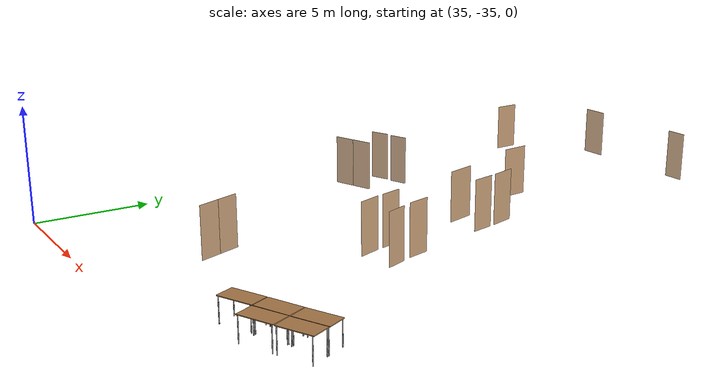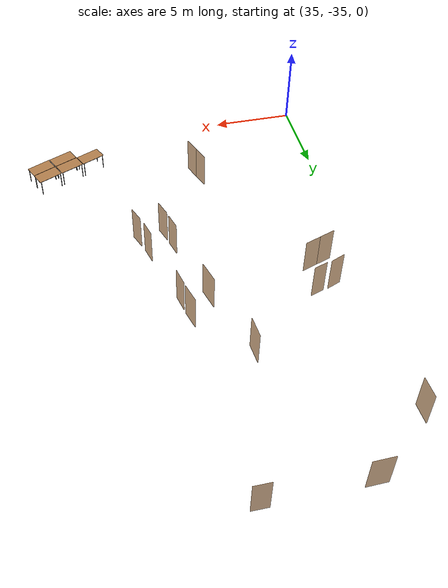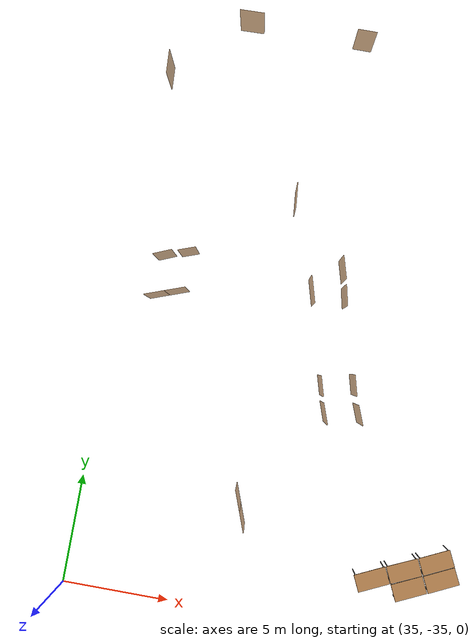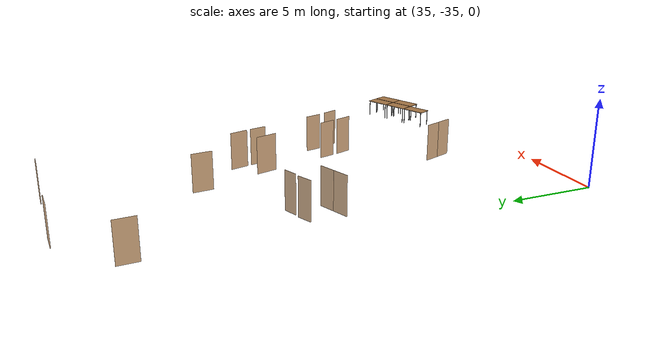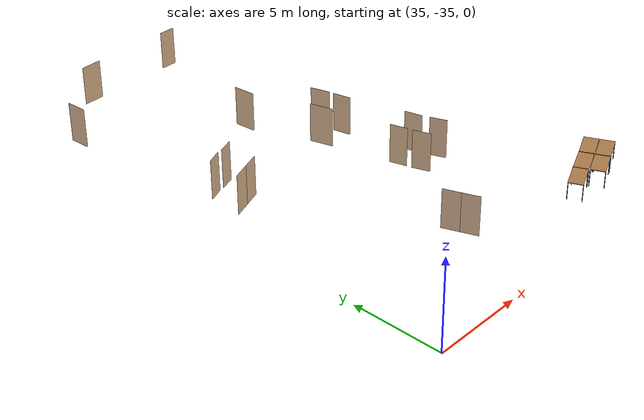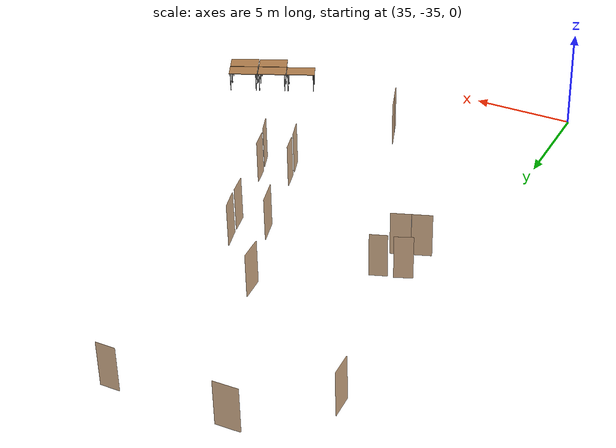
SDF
<sdf version="1.7">
 <world name="world">
  <include><uri>model://sun</uri></include>
  <include>
   <name>OpenRobotics/Table_3</name>
   <uri>model://Table</uri>
   <pose>49.11869046079212 -32.151359632969715 0.0 0 0 0.4303</pose>
   <static>True</static>
  </include>
  <include>
   <name>OpenRobotics/Table_4</name>
   <uri>model://Table</uri>
   <pose>50.516762968333715 -31.527827457209188 0.0 0 0 0.4167</pose>
   <static>True</static>
  </include>
  <include>
   <name>OpenRobotics/Table_5</name>
   <uri>model://Table</uri>
   <pose>51.92469862120098 -30.894205397149992 0.0 0 0 0.4347</pose>
   <static>True</static>
  </include>
  <include>
   <name>OpenRobotics/Table_6</name>
   <uri>model://Table</uri>
   <pose>52.26673436197726 -31.64845259084722 0.0 0 0 0.4389</pose>
   <static>True</static>
  </include>
  <include>
   <name>OpenRobotics/Table_7</name>
   <uri>model://Table</uri>
   <pose>50.85868533962349 -32.28207465090642 0.0 0 0 0.4288</pose>
   <static>True</static>
  </include>
  <model name="D12">
   <pose>47.22224569058811 -24.82995819467613 0.0 0 0 -1.206774434324264</pose>
   <link name="right">
    <pose>0 0 1.11 0 0 0</pose>
    <visual name="right_visual">
     <geometry><box><size>0.9299814647233979 0.03 2.2</size></box></geometry>
     <material><ambient>0.5 0.25 0 0.6</ambient><diffuse>0.5 0.25 0 0.6</diffuse></material>
    </visual>
    <collision name="right_collision">
     <geometry><box><size>0.9299814647233979 0.03 2.2</size></box></geometry>
     <surface><contact><collide_bitmask>0x02</collide_bitmask></contact></surface>
    </collision>
    <inertial>
     <mass>50.0</mass>
     <inertia><ixx>20.17041666666667</ixx><iyy>23.770273019704494</iyy><izz>3.6073563530378197</izz></inertia>
    </inertial>
   </link>
   <joint name="right_joint" type="revolute">
    <parent>world</parent>
    <child>right</child>
    <axis><xyz>0 0 1</xyz><limit><lower>0</lower><upper>1.57</upper></limit></axis>
    <pose>0.46999073236169897 0 0 0 0 0</pose>
   </joint>
   <plugin name="door" filename="libdoor.so">
    <v_max_door>0.5</v_max_door>
    <a_max_door>0.3</a_max_door>
    <a_nom_door>0.15</a_nom_door>
    <dx_min_door>0.01</dx_min_door>
    <f_max_door>500.0</f_max_door>
    <door name="D12" type="SwingDoor" left_joint_name="empty_joint" right_joint_name="right_joint"/>
   </plugin>
  </model>
  <model name="D13">
   <pose>46.78605659127199 -23.541003817892623 0.0 0 0 -1.3188596632420009</pose>
   <link name="right">
    <pose>0 0 1.11 0 0 0</pose>
    <visual name="right_visual">
     <geometry><box><size>0.981892242367588 0.03 2.2</size></box></geometry>
     <material><ambient>0.5 0.25 0 0.6</ambient><diffuse>0.5 0.25 0 0.6</diffuse></material>
    </visual>
    <collision name="right_collision">
     <geometry><box><size>0.981892242367588 0.03 2.2</size></box></geometry>
     <surface><contact><collide_bitmask>0x02</collide_bitmask></contact></surface>
    </collision>
    <inertial>
     <mass>50.0</mass>
     <inertia><ixx>20.17041666666667</ixx><iyy>24.183801565090214</iyy><izz>4.020884898423543</izz></inertia>
    </inertial>
   </link>
   <joint name="right_joint" type="revolute">
    <parent>world</parent>
    <child>right</child>
    <axis><xyz>0 0 -1</xyz><limit><lower>0</lower><upper>1.57</upper></limit></axis>
    <pose>0.495946121183794 0 0 0 0 0</pose>
   </joint>
   <plugin name="door" filename="libdoor.so">
    <v_max_door>0.5</v_max_door>
    <a_max_door>0.3</a_max_door>
    <a_nom_door>0.15</a_nom_door>
    <dx_min_door>0.01</dx_min_door>
    <f_max_door>500.0</f_max_door>
    <door name="D13" type="SwingDoor" left_joint_name="empty_joint" right_joint_name="right_joint"/>
   </plugin>
  </model>
  <model name="D14">
   <pose>45.705815439138505 -19.567913478689803 0.0 0 0 -1.3543970765350084</pose>
   <link name="right">
    <pose>0 0 1.11 0 0 0</pose>
    <visual name="right_visual">
     <geometry><box><size>0.9868671713911081 0.03 2.2</size></box></geometry>
     <material><ambient>0.5 0.25 0 0.6</ambient><diffuse>0.5 0.25 0 0.6</diffuse></material>
    </visual>
    <collision name="right_collision">
     <geometry><box><size>0.9868671713911081 0.03 2.2</size></box></geometry>
     <surface><contact><collide_bitmask>0x02</collide_bitmask></contact></surface>
    </collision>
    <inertial>
     <mass>50.0</mass>
     <inertia><ixx>20.17041666666667</ixx><iyy>24.224611724872865</iyy><izz>4.061695058206195</izz></inertia>
    </inertial>
   </link>
   <joint name="right_joint" type="revolute">
    <parent>world</parent>
    <child>right</child>
    <axis><xyz>0 0 1</xyz><limit><lower>0</lower><upper>1.57</upper></limit></axis>
    <pose>0.49843358569555407 0 0 0 0 0</pose>
   </joint>
   <plugin name="door" filename="libdoor.so">
    <v_max_door>0.5</v_max_door>
    <a_max_door>0.3</a_max_door>
    <a_nom_door>0.15</a_nom_door>
    <dx_min_door>0.01</dx_min_door>
    <f_max_door>500.0</f_max_door>
    <door name="D14" type="SwingDoor" left_joint_name="empty_joint" right_joint_name="right_joint"/>
   </plugin>
  </model>
  <model name="D15">
   <pose>45.407937113354734 -18.323059832155543 0.0 0 0 -1.2966441673642015</pose>
   <link name="right">
    <pose>0 0 1.11 0 0 0</pose>
    <visual name="right_visual">
     <geometry><box><size>1.1051405002353125 0.03 2.2</size></box></geometry>
     <material><ambient>0.5 0.25 0 0.6</ambient><diffuse>0.5 0.25 0 0.6</diffuse></material>
    </visual>
    <collision name="right_collision">
     <geometry><box><size>1.1051405002353125 0.03 2.2</size></box></geometry>
     <surface><contact><collide_bitmask>0x02</collide_bitmask></contact></surface>
    </collision>
    <inertial>
     <mass>50.0</mass>
     <inertia><ixx>20.17041666666667</ixx><iyy>25.255564688584826</iyy><izz>5.092648021918153</izz></inertia>
    </inertial>
   </link>
   <joint name="right_joint" type="revolute">
    <parent>world</parent>
    <child>right</child>
    <axis><xyz>0 0 -1</xyz><limit><lower>0</lower><upper>1.57</upper></limit></axis>
    <pose>0.5575702501176563 0 0 0 0 0</pose>
   </joint>
   <plugin name="door" filename="libdoor.so">
    <v_max_door>0.5</v_max_door>
    <a_max_door>0.3</a_max_door>
    <a_nom_door>0.15</a_nom_door>
    <dx_min_door>0.01</dx_min_door>
    <f_max_door>500.0</f_max_door>
    <door name="D15" type="SwingDoor" left_joint_name="empty_joint" right_joint_name="right_joint"/>
   </plugin>
  </model>
  <model name="D16">
   <pose>42.667853309346725 -15.418760326949517 0.0 0 0 -1.4795248715580769</pose>
   <link name="right">
    <pose>0 0 1.11 0 0 0</pose>
    <visual name="right_visual">
     <geometry><box><size>1.1815982625001065 0.03 2.2</size></box></geometry>
     <material><ambient>0.5 0.25 0 0.6</ambient><diffuse>0.5 0.25 0 0.6</diffuse></material>
    </visual>
    <collision name="right_collision">
     <geometry><box><size>1.1815982625001065 0.03 2.2</size></box></geometry>
     <surface><contact><collide_bitmask>0x02</collide_bitmask></contact></surface>
    </collision>
    <inertial>
     <mass>50.0</mass>
     <inertia><ixx>20.17041666666667</ixx><iyy>25.984060224763635</iyy><izz>5.821143558096961</izz></inertia>
    </inertial>
   </link>
   <joint name="right_joint" type="revolute">
    <parent>world</parent>
    <child>right</child>
    <axis><xyz>0 0 1</xyz><limit><lower>0</lower><upper>1.57</upper></limit></axis>
    <pose>0.5957991312500532 0 0 0 0 0</pose>
   </joint>
   <plugin name="door" filename="libdoor.so">
    <v_max_door>0.5</v_max_door>
    <a_max_door>0.3</a_max_door>
    <a_nom_door>0.15</a_nom_door>
    <dx_min_door>0.01</dx_min_door>
    <f_max_door>500.0</f_max_door>
    <door name="D16" type="SwingDoor" left_joint_name="empty_joint" right_joint_name="right_joint"/>
   </plugin>
  </model>
  <model name="D17">
   <pose>44.15061282330526 -19.557256746958622 0.0 0 0 1.8422869865588756</pose>
   <link name="right">
    <pose>0 0 1.11 0 0 0</pose>
    <visual name="right_visual">
     <geometry><box><size>1.2844782149061784 0.03 2.2</size></box></geometry>
     <material><ambient>0.5 0.25 0 0.6</ambient><diffuse>0.5 0.25 0 0.6</diffuse></material>
    </visual>
    <collision name="right_collision">
     <geometry><box><size>1.2844782149061784 0.03 2.2</size></box></geometry>
     <surface><contact><collide_bitmask>0x02</collide_bitmask></contact></surface>
    </collision>
    <inertial>
     <mass>50.0</mass>
     <inertia><ixx>20.17041666666667</ixx><iyy>27.04118451903568</iyy><izz>6.878267852369011</izz></inertia>
    </inertial>
   </link>
   <joint name="right_joint" type="revolute">
    <parent>world</parent>
    <child>right</child>
    <axis><xyz>0 0 -1</xyz><limit><lower>0</lower><upper>1.57</upper></limit></axis>
    <pose>0.6472391074530892 0 0 0 0 0</pose>
   </joint>
   <plugin name="door" filename="libdoor.so">
    <v_max_door>0.5</v_max_door>
    <a_max_door>0.3</a_max_door>
    <a_nom_door>0.15</a_nom_door>
    <dx_min_door>0.01</dx_min_door>
    <f_max_door>500.0</f_max_door>
    <door name="D17" type="SwingDoor" left_joint_name="empty_joint" right_joint_name="right_joint"/>
   </plugin>
  </model>
  <model name="D18">
   <pose>45.29388740993381 -23.83077622539151 0.0 0 0 1.8423285281827284</pose>
   <link name="right">
    <pose>0 0 1.11 0 0 0</pose>
    <visual name="right_visual">
     <geometry><box><size>0.9541620605206925 0.03 2.2</size></box></geometry>
     <material><ambient>0.5 0.25 0 0.6</ambient><diffuse>0.5 0.25 0 0.6</diffuse></material>
    </visual>
    <collision name="right_collision">
     <geometry><box><size>0.9541620605206925 0.03 2.2</size></box></geometry>
     <surface><contact><collide_bitmask>0x02</collide_bitmask></contact></surface>
    </collision>
    <inertial>
     <mass>50.0</mass>
     <inertia><ixx>20.17041666666667</ixx><iyy>23.960105157237898</iyy><izz>3.7971884905712243</izz></inertia>
    </inertial>
   </link>
   <joint name="right_joint" type="revolute">
    <parent>world</parent>
    <child>right</child>
    <axis><xyz>0 0 1</xyz><limit><lower>0</lower><upper>1.57</upper></limit></axis>
    <pose>0.48208103026034627 0 0 0 0 0</pose>
   </joint>
   <plugin name="door" filename="libdoor.so">
    <v_max_door>0.5</v_max_door>
    <a_max_door>0.3</a_max_door>
    <a_nom_door>0.15</a_nom_door>
    <dx_min_door>0.01</dx_min_door>
    <f_max_door>500.0</f_max_door>
    <door name="D18" type="SwingDoor" left_joint_name="empty_joint" right_joint_name="right_joint"/>
   </plugin>
  </model>
  <model name="D19">
   <pose>45.64737346884678 -25.03254946705505 0.0 0 0 1.9038844260786356</pose>
   <link name="right">
    <pose>0 0 1.11 0 0 0</pose>
    <visual name="right_visual">
     <geometry><box><size>0.9924107750822058 0.03 2.2</size></box></geometry>
     <material><ambient>0.5 0.25 0 0.6</ambient><diffuse>0.5 0.25 0 0.6</diffuse></material>
    </visual>
    <collision name="right_collision">
     <geometry><box><size>0.9924107750822058 0.03 2.2</size></box></geometry>
     <surface><contact><collide_bitmask>0x02</collide_bitmask></contact></surface>
    </collision>
    <inertial>
     <mass>50.0</mass>
     <inertia><ixx>20.17041666666667</ixx><iyy>24.270329777080274</iyy><izz>4.107413110413602</izz></inertia>
    </inertial>
   </link>
   <joint name="right_joint" type="revolute">
    <parent>world</parent>
    <child>right</child>
    <axis><xyz>0 0 -1</xyz><limit><lower>0</lower><upper>1.57</upper></limit></axis>
    <pose>0.5012053875411029 0 0 0 0 0</pose>
   </joint>
   <plugin name="door" filename="libdoor.so">
    <v_max_door>0.5</v_max_door>
    <a_max_door>0.3</a_max_door>
    <a_nom_door>0.15</a_nom_door>
    <dx_min_door>0.01</dx_min_door>
    <f_max_door>500.0</f_max_door>
    <door name="D19" type="SwingDoor" left_joint_name="empty_joint" right_joint_name="right_joint"/>
   </plugin>
  </model>
  <model name="D28">
   <pose>35.68451967980185 -10.235960882028031 0.0 0 0 1.6268911847432361</pose>
   <link name="right">
    <pose>0 0 1.11 0 0 0</pose>
    <visual name="right_visual">
     <geometry><box><size>1.1183273379902512 0.03 2.2</size></box></geometry>
     <material><ambient>0.5 0.25 0 0.6</ambient><diffuse>0.5 0.25 0 0.6</diffuse></material>
    </visual>
    <collision name="right_collision">
     <geometry><box><size>1.1183273379902512 0.03 2.2</size></box></geometry>
     <surface><contact><collide_bitmask>0x02</collide_bitmask></contact></surface>
    </collision>
    <inertial>
     <mass>50.0</mass>
     <inertia><ixx>20.17041666666667</ixx><iyy>25.377733478734847</iyy><izz>5.2148168120681735</izz></inertia>
    </inertial>
   </link>
   <joint name="right_joint" type="revolute">
    <parent>world</parent>
    <child>right</child>
    <axis><xyz>0 0 1</xyz><limit><lower>0</lower><upper>1.57</upper></limit></axis>
    <pose>0.5641636689951256 0 0 0 0 0</pose>
   </joint>
   <plugin name="door" filename="libdoor.so">
    <v_max_door>0.5</v_max_door>
    <a_max_door>0.3</a_max_door>
    <a_nom_door>0.15</a_nom_door>
    <dx_min_door>0.01</dx_min_door>
    <f_max_door>500.0</f_max_door>
    <door name="D28" type="SwingDoor" left_joint_name="empty_joint" right_joint_name="right_joint"/>
   </plugin>
  </model>
  <model name="D29">
   <pose>39.132199133811554 -7.205141029885873 0.0 0 0 -3.1181141700195765</pose>
   <link name="right">
    <pose>0 0 1.11 0 0 0</pose>
    <visual name="right_visual">
     <geometry><box><size>1.1634708630291826 0.03 2.2</size></box></geometry>
     <material><ambient>0.5 0.25 0 0.6</ambient><diffuse>0.5 0.25 0 0.6</diffuse></material>
    </visual>
    <collision name="right_collision">
     <geometry><box><size>1.1634708630291826 0.03 2.2</size></box></geometry>
     <surface><contact><collide_bitmask>0x02</collide_bitmask></contact></surface>
    </collision>
    <inertial>
     <mass>50.0</mass>
     <inertia><ixx>20.17041666666667</ixx><iyy>25.8069352046578</iyy><izz>5.644018537991129</izz></inertia>
    </inertial>
   </link>
   <joint name="right_joint" type="revolute">
    <parent>world</parent>
    <child>right</child>
    <axis><xyz>0 0 1</xyz><limit><lower>0</lower><upper>1.57</upper></limit></axis>
    <pose>0.5867354315145913 0 0 0 0 0</pose>
   </joint>
   <plugin name="door" filename="libdoor.so">
    <v_max_door>0.5</v_max_door>
    <a_max_door>0.3</a_max_door>
    <a_nom_door>0.15</a_nom_door>
    <dx_min_door>0.01</dx_min_door>
    <f_max_door>500.0</f_max_door>
    <door name="D29" type="SwingDoor" left_joint_name="empty_joint" right_joint_name="right_joint"/>
   </plugin>
  </model>
  <model name="D30">
   <pose>44.612480111314056 -7.191083213559635 0.0 0 0 3.140978704747483</pose>
   <link name="right">
    <pose>0 0 1.11 0 0 0</pose>
    <visual name="right_visual">
     <geometry><box><size>0.9132812720792519 0.03 2.2</size></box></geometry>
     <material><ambient>0.5 0.25 0 0.6</ambient><diffuse>0.5 0.25 0 0.6</diffuse></material>
    </visual>
    <collision name="right_collision">
     <geometry><box><size>0.9132812720792519 0.03 2.2</size></box></geometry>
     <surface><contact><collide_bitmask>0x02</collide_bitmask></contact></surface>
    </collision>
    <inertial>
     <mass>50.0</mass>
     <inertia><ixx>20.17041666666667</ixx><iyy>23.64201117471124</iyy><izz>3.4790945080445694</izz></inertia>
    </inertial>
   </link>
   <joint name="right_joint" type="revolute">
    <parent>world</parent>
    <child>right</child>
    <axis><xyz>0 0 1</xyz><limit><lower>0</lower><upper>1.57</upper></limit></axis>
    <pose>0.46164063603962596 0 0 0 0 0</pose>
   </joint>
   <plugin name="door" filename="libdoor.so">
    <v_max_door>0.5</v_max_door>
    <a_max_door>0.3</a_max_door>
    <a_nom_door>0.15</a_nom_door>
    <dx_min_door>0.01</dx_min_door>
    <f_max_door>500.0</f_max_door>
    <door name="D30" type="SwingDoor" left_joint_name="empty_joint" right_joint_name="right_joint"/>
   </plugin>
  </model>
  <model name="D39">
   <pose>37.06286589669212 -19.07350914805496 0.0 0 0 -2.7475467194602223</pose>
   <link name="right">
    <pose>0 0 1.11 0 0 0</pose>
    <visual name="right_visual">
     <geometry><box><size>0.879410030742072 0.03 2.2</size></box></geometry>
     <material><ambient>0.5 0.25 0 0.6</ambient><diffuse>0.5 0.25 0 0.6</diffuse></material>
    </visual>
    <collision name="right_collision">
     <geometry><box><size>0.879410030742072 0.03 2.2</size></box></geometry>
     <surface><contact><collide_bitmask>0x02</collide_bitmask></contact></surface>
    </collision>
    <inertial>
     <mass>50.0</mass>
     <inertia><ixx>20.17041666666667</ixx><iyy>23.38900834237405</iyy><izz>3.2260916757073836</izz></inertia>
    </inertial>
   </link>
   <joint name="right_joint" type="revolute">
    <parent>world</parent>
    <child>right</child>
    <axis><xyz>0 0 1</xyz><limit><lower>0</lower><upper>1.57</upper></limit></axis>
    <pose>0.444705015371036 0 0 0 0 0</pose>
   </joint>
   <plugin name="door" filename="libdoor.so">
    <v_max_door>0.5</v_max_door>
    <a_max_door>0.3</a_max_door>
    <a_nom_door>0.15</a_nom_door>
    <dx_min_door>0.01</dx_min_door>
    <f_max_door>500.0</f_max_door>
    <door name="D39" type="SwingDoor" left_joint_name="empty_joint" right_joint_name="right_joint"/>
   </plugin>
  </model>
  <model name="D40">
   <pose>38.135001130540715 -18.73889910864456 0.0 0 0 0.34049278085755585</pose>
   <link name="right">
    <pose>0 0 1.11 0 0 0</pose>
    <visual name="right_visual">
     <geometry><box><size>0.8336047453694273 0.03 2.2</size></box></geometry>
     <material><ambient>0.5 0.25 0 0.6</ambient><diffuse>0.5 0.25 0 0.6</diffuse></material>
    </visual>
    <collision name="right_collision">
     <geometry><box><size>0.8336047453694273 0.03 2.2</size></box></geometry>
     <surface><contact><collide_bitmask>0x02</collide_bitmask></contact></surface>
    </collision>
    <inertial>
     <mass>50.0</mass>
     <inertia><ixx>20.17041666666667</ixx><iyy>23.062070297926788</iyy><izz>2.899153631260116</izz></inertia>
    </inertial>
   </link>
   <joint name="right_joint" type="revolute">
    <parent>world</parent>
    <child>right</child>
    <axis><xyz>0 0 1</xyz><limit><lower>0</lower><upper>1.57</upper></limit></axis>
    <pose>0.42180237268471366 0 0 0 0 0</pose>
   </joint>
   <plugin name="door" filename="libdoor.so">
    <v_max_door>0.5</v_max_door>
    <a_max_door>0.3</a_max_door>
    <a_nom_door>0.15</a_nom_door>
    <dx_min_door>0.01</dx_min_door>
    <f_max_door>500.0</f_max_door>
    <door name="D40" type="SwingDoor" left_joint_name="empty_joint" right_joint_name="right_joint"/>
   </plugin>
  </model>
  <model name="DH3">
   <pose>42.59631716336403 -29.95873707927945 0.0 0 0 -1.214222683210572</pose>
   <link name="right">
    <pose>0.48164877323342514 0 1.11 0 0 0</pose>
    <visual name="right_visual">
     <geometry><box><size>0.9532975464668503 0.03 2.2</size></box></geometry>
     <material><ambient>0.5 0.25 0 0.6</ambient><diffuse>0.5 0.25 0 0.6</diffuse></material>
    </visual>
    <collision name="right_collision">
     <geometry><box><size>0.9532975464668503 0.03 2.2</size></box></geometry>
     <surface><contact><collide_bitmask>0x02</collide_bitmask></contact></surface>
    </collision>
    <inertial>
     <mass>50.0</mass>
     <inertia><ixx>20.17041666666667</ixx><iyy>23.95323421708216</iyy><izz>3.790317550415486</izz></inertia>
    </inertial>
   </link>
   <joint name="right_joint" type="revolute">
    <parent>world</parent>
    <child>right</child>
    <axis><xyz>0 0 -1</xyz><limit><lower>0</lower><upper>1.57</upper></limit></axis>
    <pose>0.48164877323342514 0 0 0 0 0</pose>
   </joint>
   <link name="left">
    <pose>-0.48164877323342514 0 1.11 0 0 0</pose>
    <visual name="left_visual">
     <geometry><box><size>0.9532975464668503 0.03 2.2</size></box></geometry>
     <material><ambient>0.5 0.25 0 0.6</ambient><diffuse>0.5 0.25 0 0.6</diffuse></material>
    </visual>
    <collision name="left_collision">
     <geometry><box><size>0.9532975464668503 0.03 2.2</size></box></geometry>
     <surface><contact><collide_bitmask>0x02</collide_bitmask></contact></surface>
    </collision>
    <inertial>
     <mass>50.0</mass>
     <inertia><ixx>20.17041666666667</ixx><iyy>23.95323421708216</iyy><izz>3.790317550415486</izz></inertia>
    </inertial>
   </link>
   <joint name="left_joint" type="revolute">
    <parent>world</parent>
    <child>left</child>
    <axis><xyz>0 0 -1</xyz><limit><lower>-1.57</lower><upper>0</upper></limit></axis>
    <pose>-0.48164877323342514 0 0 0 0 0</pose>
   </joint>
   <plugin name="door" filename="libdoor.so">
    <v_max_door>0.5</v_max_door>
    <a_max_door>0.3</a_max_door>
    <a_nom_door>0.15</a_nom_door>
    <dx_min_door>0.01</dx_min_door>
    <f_max_door>500.0</f_max_door>
    <door name="DH3" type="DoubleSwingDoor" left_joint_name="left_joint" right_joint_name="right_joint"/>
   </plugin>
  </model>
  <model name="DH6">
   <pose>37.48868168799331 -20.818662338522167 0.0 0 0 0.34567281517201764</pose>
   <link name="right">
    <pose>0.4822296818315158 0 1.11 0 0 0</pose>
    <visual name="right_visual">
     <geometry><box><size>0.9544593636630316 0.03 2.2</size></box></geometry>
     <material><ambient>0.5 0.25 0 0.6</ambient><diffuse>0.5 0.25 0 0.6</diffuse></material>
    </visual>
    <collision name="right_collision">
     <geometry><box><size>0.9544593636630316 0.03 2.2</size></box></geometry>
     <surface><contact><collide_bitmask>0x02</collide_bitmask></contact></surface>
    </collision>
    <inertial>
     <mass>50.0</mass>
     <inertia><ixx>20.17041666666667</ixx><iyy>23.962469487016836</iyy><izz>3.799552820350164</izz></inertia>
    </inertial>
   </link>
   <joint name="right_joint" type="revolute">
    <parent>world</parent>
    <child>right</child>
    <axis><xyz>0 0 -1</xyz><limit><lower>0</lower><upper>1.57</upper></limit></axis>
    <pose>0.4822296818315158 0 0 0 0 0</pose>
   </joint>
   <link name="left">
    <pose>-0.4822296818315158 0 1.11 0 0 0</pose>
    <visual name="left_visual">
     <geometry><box><size>0.9544593636630316 0.03 2.2</size></box></geometry>
     <material><ambient>0.5 0.25 0 0.6</ambient><diffuse>0.5 0.25 0 0.6</diffuse></material>
    </visual>
    <collision name="left_collision">
     <geometry><box><size>0.9544593636630316 0.03 2.2</size></box></geometry>
     <surface><contact><collide_bitmask>0x02</collide_bitmask></contact></surface>
    </collision>
    <inertial>
     <mass>50.0</mass>
     <inertia><ixx>20.17041666666667</ixx><iyy>23.962469487016836</iyy><izz>3.799552820350164</izz></inertia>
    </inertial>
   </link>
   <joint name="left_joint" type="revolute">
    <parent>world</parent>
    <child>left</child>
    <axis><xyz>0 0 -1</xyz><limit><lower>-1.57</lower><upper>0</upper></limit></axis>
    <pose>-0.4822296818315158 0 0 0 0 0</pose>
   </joint>
   <plugin name="door" filename="libdoor.so">
    <v_max_door>0.5</v_max_door>
    <a_max_door>0.3</a_max_door>
    <a_nom_door>0.15</a_nom_door>
    <dx_min_door>0.01</dx_min_door>
    <f_max_door>500.0</f_max_door>
    <door name="DH6" type="DoubleSwingDoor" left_joint_name="left_joint" right_joint_name="right_joint"/>
   </plugin>
  </model>
 </world>
</sdf>
